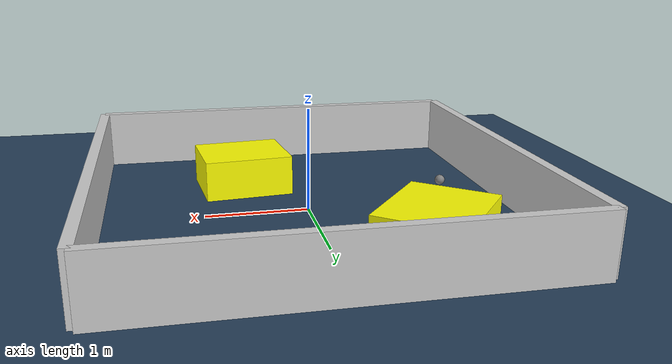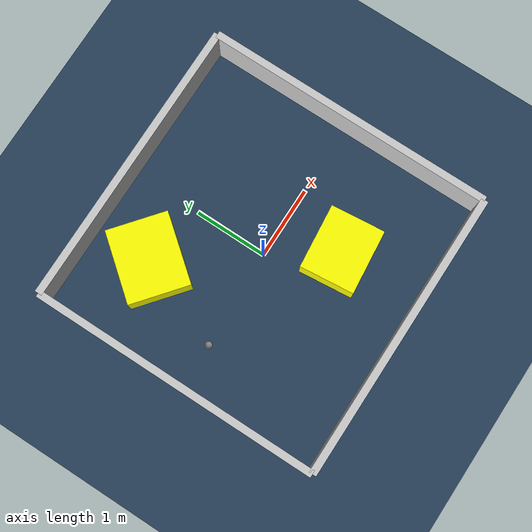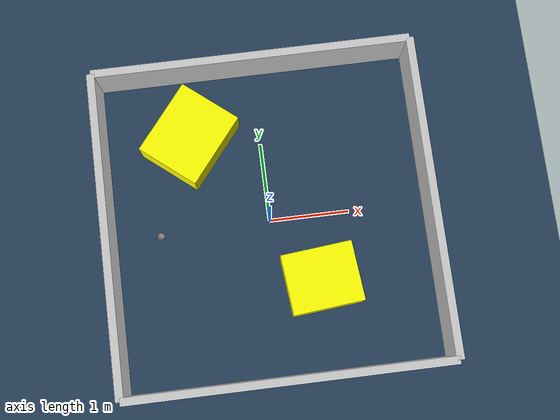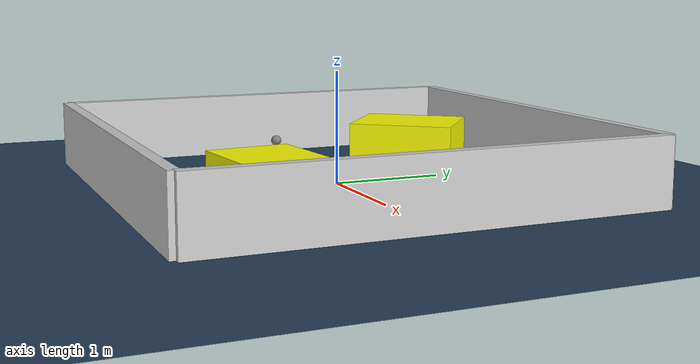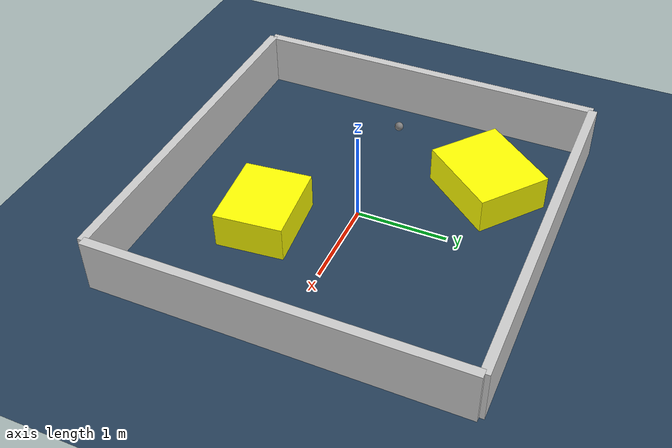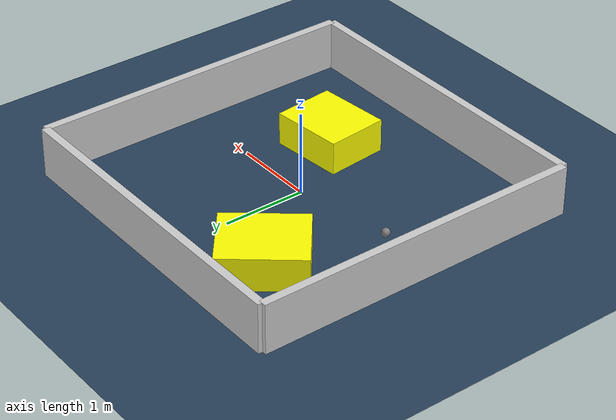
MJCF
<?xml version="1.0" ?>
<mujoco model="generated_environment">
  <option timestep="0.01" integrator="RK4" cone="elliptic"/>
  <default>
    <geom density="1"/>
  </default>
  <asset>
    <texture builtin="gradient" height="3072" rgb1="0.3 0.5 0.7" rgb2="0 0 0" type="skybox" width="512"/>
    <texture builtin="checker" height="300" mark="edge" markrgb="0.8 0.8 0.8" name="groundplane" rgb1="0.2 0.3 0.4" rgb2="0.1 0.2 0.3" type="2d" width="300"/>
    <material name="groundplane" reflectance="0.2" texrepeat="5 5" texture="groundplane" texuniform="true"/>
    <material name="robot" rgba="0.0 1.0 0.0 1"/>
  </asset>
  <worldbody>
    <light dir="0 0 -1" directional="true" pos="0 0 1.5"/>
    <geom condim="4" friction="1.0 0.005 0.001" material="groundplane" name="floor" size="0 0 0.05" type="plane"/>
    <body name="walls">
      <geom name="wall_1" condim="4" pos="-2.0 0.0 0.3" rgba="0.800000011920929 0.800000011920929 0.800000011920929 1.0" size="0.05 2.0 0.3" type="box"/>
      <geom name="wall_2" condim="4" pos="2.0 0.0 0.3" rgba="0.800000011920929 0.800000011920929 0.800000011920929 1.0" size="0.05 2.0 0.3" type="box"/>
      <geom name="wall_3" condim="4" pos="0.0 -2.0 0.3" rgba="0.800000011920929 0.800000011920929 0.800000011920929 1.0" size="2.0 0.05 0.3" type="box"/>
      <geom name="wall_4" condim="4" pos="0.0 2.0 0.3" rgba="0.800000011920929 0.800000011920929 0.800000011920929 1.0" size="2.0 0.05 0.3" type="box"/>
    </body>
    <body name="robot">
      <joint name="joint_x" type="slide" pos="0 0 0" axis="1 0 0"/>
      <joint name="joint_y" type="slide" pos="0 0 0" axis="0 1 0"/>
      <geom name="robot" type="sphere" pos="-1.373681120215072 -0.0704005858675516 0.2" size="0.05" mass="5." friction="1.0 0.005 0.0001" condim="4"/>
      <site name="sensor_ball"/>
    </body>
    <body name="obstacle_1_movable">
      <geom name="obstacle_1_movable" condim="4" pos="-0.8790467068123741 1.1574075677601106 0.2" euler="0 0 321.05229003904736" friction="1.0 0.005 0.001" rgba="1 1 0 1" size="0.4156842428170986 0.49824627156062906 0.2" type="box" mass="0.1"/>
      <joint type="free"/>
    </body>
    <body name="obstacle_2_movable">
      <geom name="obstacle_2_movable" condim="4" pos="0.544026194884482 -0.8333138455884622 0.2" euler="0 0 5.536610422774184" friction="1.0 0.005 0.001" rgba="1 1 0 1" size="0.4443331252116597 0.37325777316999353 0.2" type="box" mass="0.1"/>
      <joint type="free"/>
    </body>
  </worldbody>
  <actuator>
    <motor name="actuator_x" joint="joint_x" gear="1" ctrlrange="-1 1"/>
    <motor name="actuator_y" joint="joint_y" gear="1" ctrlrange="-1 1"/>
  </actuator>
</mujoco>
